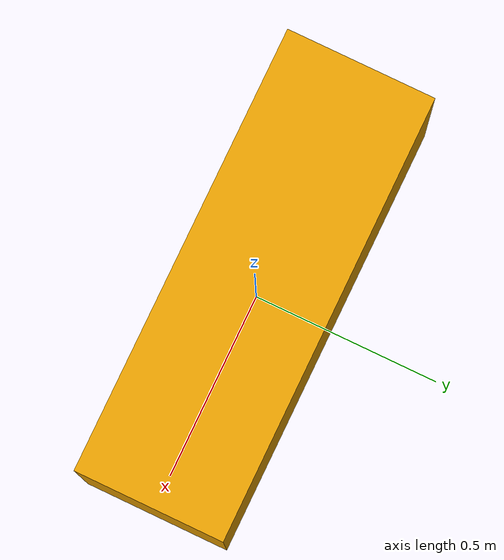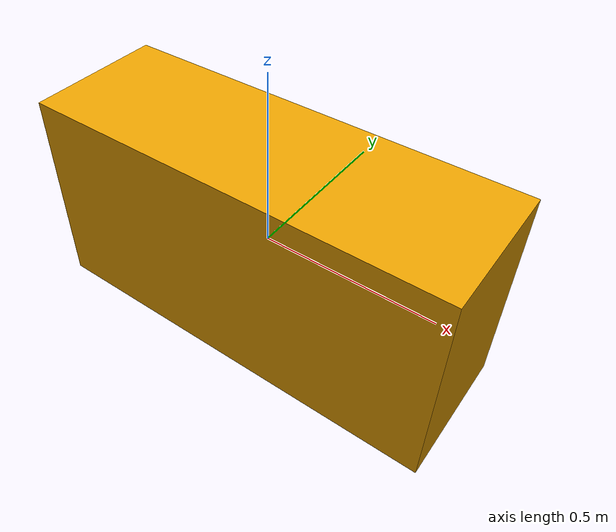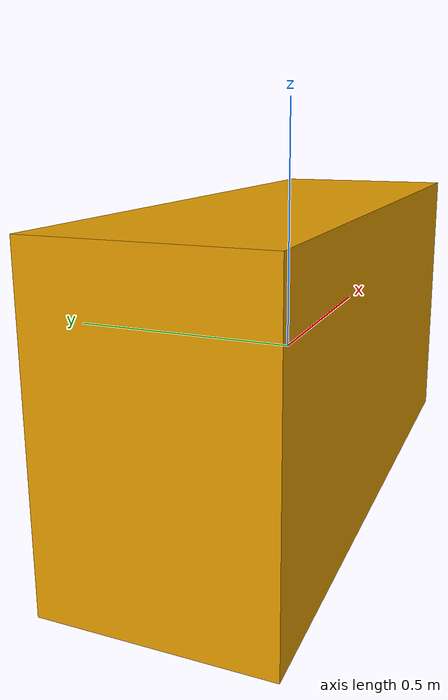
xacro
<?xml version="1.0" encoding="UTF-8" ?>
<robot xmlns:xacro="http://www.ros.org/wiki/xacro" name="box">

    <xacro:property name="len_x" value="1.2"/>
    <xacro:property name="len_y" value="0.4"/>
    <xacro:property name="len_z" value="0.6"/>

    <!-- link -->
    <link name="base">
        <visual>
            <geometry>
                <box size="${len_x} ${len_y} ${len_z}"/>
            </geometry>
        </visual>
    </link>

</robot>
